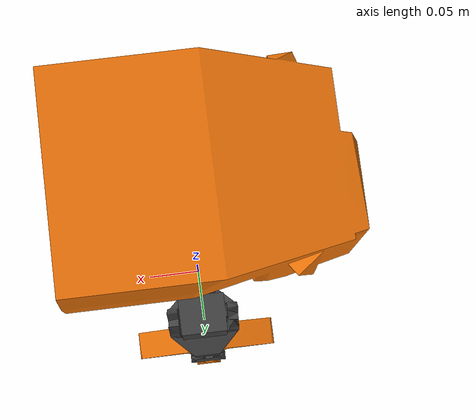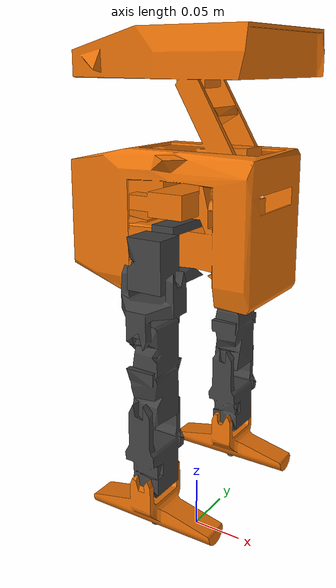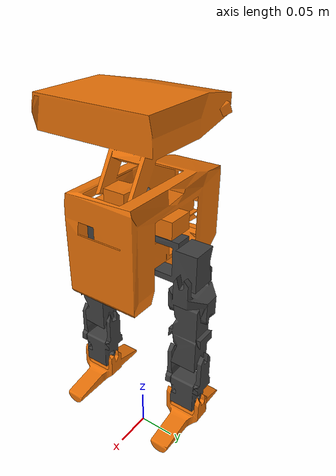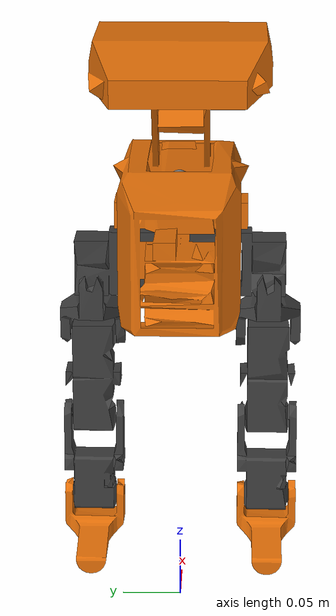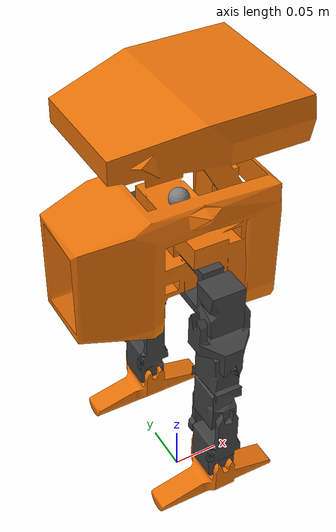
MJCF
<mujoco model="BD-5">

  <compiler angle="radian" autolimits="true"/>
  <option iterations="1" ls_iterations="5" timestep="0.002" integrator="Euler" gravity="0 0 -9.81">
    <flag eulerdamp="disable"/>
  </option>

  <default>
    <joint limited="true" damping="1.084" armature="0.045" frictionloss="0.03" />
    <position inheritrange="1.0" kp="21.1" forcerange="-4.1 4.1"/>
    <default class="visualgeom">
      <geom material="visualgeom" contype="0" conaffinity="0" group="2"/>
    </default>
    <default class="collision">
      <geom group="3"/>
    </default>
  </default>

  <asset>
    <mesh name="BODY" file="assets/BODY.STL" maxhullvert="20"/>
    <mesh name="HIP_LEFT" file="assets/HIP_LEFT.STL" maxhullvert="20"/>
    <mesh name="HIP_ROLL_LEFT" file="assets/HIP_ROLL_LEFT.STL" maxhullvert="20"/>
    <mesh name="THIGH_LEFT" file="assets/THIGH_LEFT.STL" maxhullvert="20"/>
    <mesh name="CALF_LEFT" file="assets/CALF_LEFT.STL" maxhullvert="20"/>
    <mesh name="FOOT_LEFT" file="assets/FOOT_LEFT.STL" maxhullvert="20"/>
    <mesh name="HIP_RIGHT" file="assets/HIP_RIGHT.STL" maxhullvert="20"/>
    <mesh name="HIP_ROLL_RIGHT" file="assets/HIP_ROLL_RIGHT.STL" maxhullvert="20"/>
    <mesh name="THIGH_RIGHT" file="assets/THIGH_RIGHT.STL" maxhullvert="20"/>
    <mesh name="CALF_RIGHT" file="assets/CALF_RIGHT.STL" maxhullvert="20"/>
    <mesh name="FOOT_RIGHT" file="assets/FOOT_RIGHT.STL" maxhullvert="20"/>
    <material name="visualgeom" rgba="0.5 0.9 0.2 1" />
  </asset>

  <worldbody>
    <body name="base_body" pos="0 0 0.3170777382037414" quat="1 0 0 0">
      <freejoint name="base_body" />
      <site name="imu" size="0.01" pos="-0.00121 0.00083 0.05123" />
      <camera name="front" mode="trackcom" pos="0 -3.0 0.8170777382037414" xyaxes="1 0 0 0 0 1" />
      <camera name="track" mode="trackcom" pos="0 -3.0 0.8170777382037414" xyaxes="1 0 0 0 0 1" />
      <geom type="mesh" rgba="0.9098 0.44314 0.031373 1" mesh="BODY" class="visualgeom" />
      <inertial pos="-0.00035 0.00081 0.03798" quat="0.99982257 -0.0029832  -0.00544473 -0.01778418" mass="0.92059" diaginertia="0.00468827 0.00577802 0.00266137"/>
      <body name="HIP_LEFT" pos="0 0.01425 -0.0436">
        <!-- original value was 0.05284-->
        <inertial pos="0.00185 0.0530 0.02786" quat="-0.57917026  0.19097798 -0.22686576  0.75935574" mass="0.101" diaginertia="2.89284572e-05 4.08891997e-05 4.55664031e-05" />
        <joint name="left_hip_yaw" pos="0 0 0" axis="0 0 1" range="-0.37899 0.37899" actuatorfrcrange="-4.1 4.1" damping="1.084" armature="0.045" frictionloss="0.03" />
        <geom type="mesh" rgba="0.25098 0.25098 0.25098 1" mesh="HIP_LEFT" class="visualgeom" />
        <body name="HIP_ROLL_LEFT" pos="0 0.05925 0.01275">
          <inertial pos="0 0 -0.02515" quat="3.0517578e-05 0.0000000e+00 0.0000000e+00 1.0000000e+00" mass="0.018" diaginertia="5.92983e-06 6.25751e-06 7.87081e-06" />
          <joint name="left_hip_roll" pos="0 0 0" axis="-1 0 0" range="-1.8827 0.38819" actuatorfrcrange="-4.1 4.1" damping="1.084" armature="0.045" frictionloss="0.03" />
          <geom type="mesh" rgba="0.25098 0.25098 0.25098 1" mesh="HIP_ROLL_LEFT" class="visualgeom" />
          <body name="THIGH_LEFT" pos="0 0 -0.05">
            <inertial pos="0 0.00215 -0.03525" quat=" 0.00351885 -0.00351885  0.70709803  0.70709803" mass="0.174" diaginertia="1.11453760e-04 5.11876103e-05 9.33676700e-05" />
            <joint name="left_hip_pitch" pos="0 0 0" axis="0 1 0" range="-1.7492 1.7492" actuatorfrcrange="-4.1 4.1" damping="1.084" armature="0.045" frictionloss="0.03" />
            <geom type="mesh" rgba="0.25098 0.25098 0.25098 1" mesh="THIGH_LEFT" class="visualgeom" />
            <body name="CALF_LEFT" pos="0 0 -0.0705">
              <inertial pos="0.00034 0.00191 -0.05036" quat="-0.06853654 -0.03586169  0.33373899  0.93948654" mass="0.098" diaginertia="4.49977826e-05 2.77625290e-05 3.42465984e-05" />
              <joint name="left_knee" pos="0 0 0" axis="0 -1 0" range="0 2.3829" actuatorfrcrange="-4.1 4.1" damping="1.084" armature="0.045" frictionloss="0.03" />
              <geom type="mesh" rgba="0.25098 0.25098 0.25098 1" mesh="CALF_LEFT" class="visualgeom" />
              <body name="FOOT_LEFT" pos="0 0 -0.07064">
                <inertial pos="0 0 -0.03334" quat="1. 0. 0. 0." mass="0.032" diaginertia="6.903700e-06 3.164244e-05 3.174429e-05" />
                <joint name="left_ankle" pos="0 0 0" axis="0 1 0" range="-1.8873 1.8873" actuatorfrcrange="-4.1 4.1" damping="1.084" armature="0.045" frictionloss="0.03" />
                <geom name="collision_foot_left" type="cylinder" size="0.013 0.065" pos="0 0 -0.0355" axisangle="0 1 0 -1.5708" class="collision"/>
                <geom type="mesh" rgba="0.9098 0.44314 0.031373 1" mesh="FOOT_LEFT" class="visualgeom" />
                <site group="0" name="left_foot_site" pos="0 0 -0.048"/>
              </body>
            </body>
          </body>
        </body>
      </body>
      <body name="HIP_RIGHT" pos="0 -0.01425 -0.0436">
        <inertial pos="0.00185 -0.0535 0.02786" quat="0.36885898 -0.33865446  0.64919201  0.5725434" mass="0.101" diaginertia="4.61603461e-05 4.12116205e-05 2.96353334e-05" />
        <joint name="right_hip_yaw" pos="0 0 0" axis="0 0 1" range="-0.37899 0.37899" actuatorfrcrange="-4.1 4.1" damping="1.084" armature="0.045" frictionloss="0.03" />
        <geom type="mesh" rgba="0.25098 0.25098 0.25098 1" mesh="HIP_RIGHT" class="visualgeom" />
        <body name="HIP_ROLL_RIGHT" pos="0 -0.05925 0.01275">
          <inertial pos="0 0 -0.02515" quat="3.0517578e-05 0.0000000e+00 0.0000000e+00 1.0000000e+00" mass="0.018" diaginertia="5.92983e-06 6.25751e-06 7.87081e-06" />
          <joint name="right_hip_roll" pos="0 0 0" axis="1 0 0" range="-1.8827 0.38819" actuatorfrcrange="-4.1 4.1" damping="1.084" armature="0.045" frictionloss="0.03" />
          <geom type="mesh" rgba="0.25098 0.25098 0.25098 1" mesh="HIP_ROLL_RIGHT" class="visualgeom" />
          <body name="THIGH_RIGHT" pos="0 0 -0.05">
            <inertial pos="0 0.00215 -0.03525" quat="0.00351885 -0.00351885  0.70709803  0.70709803" mass="0.174" diaginertia="1.11453760e-04 5.11876103e-05 9.33676700e-05" />
            <joint name="right_hip_pitch" pos="0 0 0" axis="0 1 0" range="-1.7492 1.7492" actuatorfrcrange="-4.1 4.1" damping="1.084" armature="0.045" frictionloss="0.03" />
            <geom type="mesh" rgba="0.25098 0.25098 0.25098 1" mesh="THIGH_RIGHT" class="visualgeom" />
            <body name="CALF_RIGHT" pos="0 0 -0.0705">
              <inertial pos="0.00034 0.00191 -0.05036" quat="-0.06853654 -0.03586169  0.33373899  0.93948654" mass="0.098" diaginertia="4.49977826e-05 2.77625290e-05 3.42465984e-05" />
              <joint name="right_knee" pos="0 0 0" axis="0 -1 0" range="0 2.3829" actuatorfrcrange="-4.1 4.1" damping="1.084" armature="0.045" frictionloss="0.03" />
              <geom type="mesh" rgba="0.25098 0.25098 0.25098 1" mesh="CALF_RIGHT" class="visualgeom" />
              <body name="FOOT_RIGHT" pos="0 0 -0.07064">
                <inertial pos="0 0 -0.03334" quat="1. 0. 0. 0." mass="0.032" diaginertia="6.903700e-06 3.164244e-05 3.174429e-05" />
                <joint name="right_ankle" pos="0 0 0" axis="0 1 0" range="-1.8873 1.8873" actuatorfrcrange="-4.1 4.1" damping="1.084" armature="0.045" frictionloss="0.03" />
                <geom name="collision_foot_right" type="cylinder" size="0.013 0.065" pos="0 0 -0.0355" axisangle="0 1 0 -1.5708" class="collision"/>
                <geom type="mesh" rgba="0.9098 0.44314 0.031373 1" mesh="FOOT_RIGHT" class="visualgeom" />
                <site group="0" name="right_foot_site" pos="0 0 -0.048"/>
              </body>
            </body>
          </body>
        </body>
      </body>
    </body>
  </worldbody>

  <actuator>
    <position name="left_hip_yaw" joint="left_hip_yaw" inheritrange="1"/>
    <position name="left_hip_roll" joint="left_hip_roll" inheritrange="1"/>
    <position name="left_hip_pitch" joint="left_hip_pitch" inheritrange="1"/>
    <position name="left_knee" joint="left_knee" inheritrange="1"/>
    <position name="left_ankle" joint="left_ankle" inheritrange="1"/>
    <position name="right_hip_yaw" joint="right_hip_yaw" inheritrange="1"/>
    <position name="right_hip_roll" joint="right_hip_roll" inheritrange="1"/>
    <position name="right_hip_pitch" joint="right_hip_pitch" inheritrange="1"/>
    <position name="right_knee" joint="right_knee" inheritrange="1"/>
    <position name="right_ankle" joint="right_ankle" inheritrange="1"/>
  </actuator>

  <sensor>
    <gyro site="imu" name="gyro"/>
    <velocimeter site="imu" name="local_linvel"/>
    <accelerometer site="imu" name="accelerometer"/>
    <framepos objtype="site" objname="imu" name="position"/>
    <framezaxis objtype="site" objname="imu" name="upvector"/>
    <framexaxis objtype="site" objname="imu" name="forwardvector"/>
    <framelinvel objtype="site" objname="imu" name="global_linvel"/>
    <frameangvel objtype="site" objname="imu" name="global_angvel"/>
    <framequat objtype="site" objname="imu" name="orientation"/>

    <framelinvel objtype="site" objname="left_foot_site" name="left_foot_global_linvel"/>
    <framelinvel objtype="site" objname="right_foot_site" name="right_foot_global_linvel"/>

    <framepos objtype="site" objname="left_foot_site" name="left_foot_pos"/>
    <framepos objtype="site" objname="right_foot_site" name="right_foot_pos"/>
  </sensor>
</mujoco>
